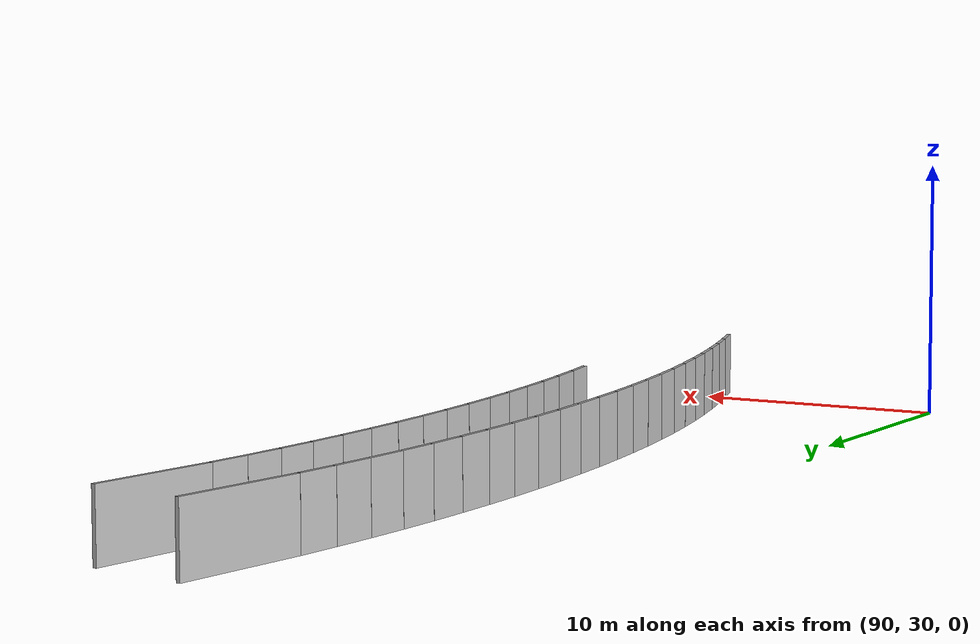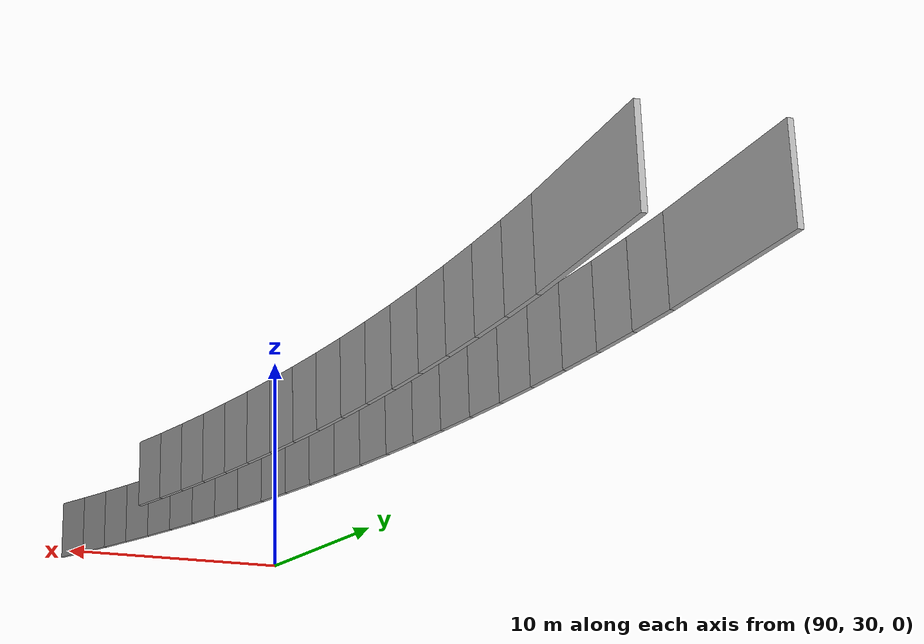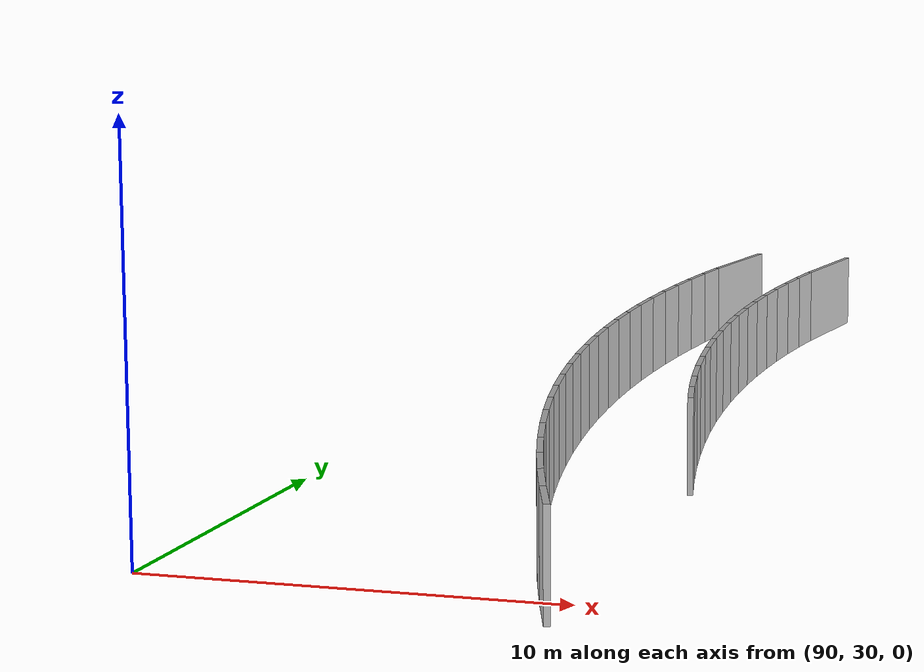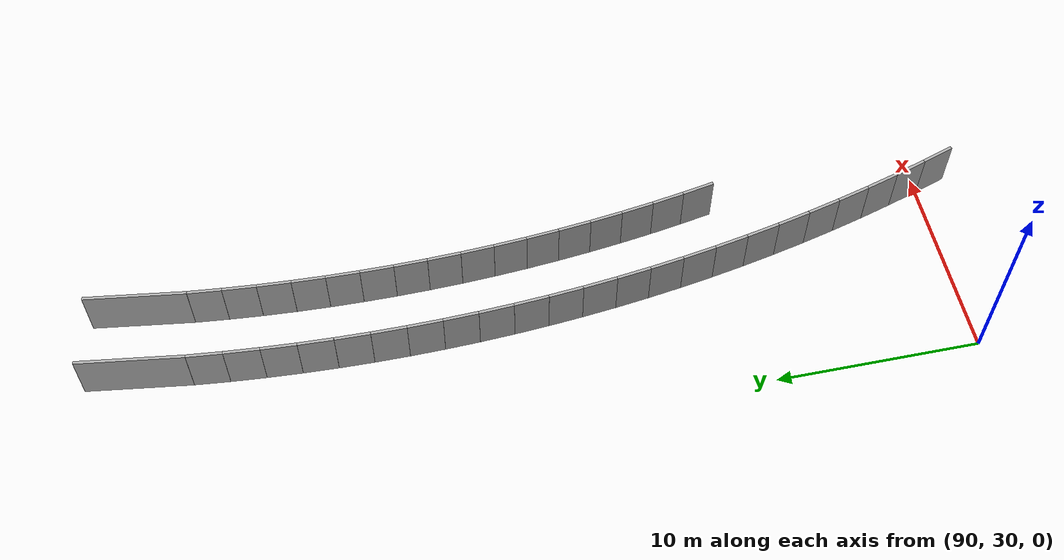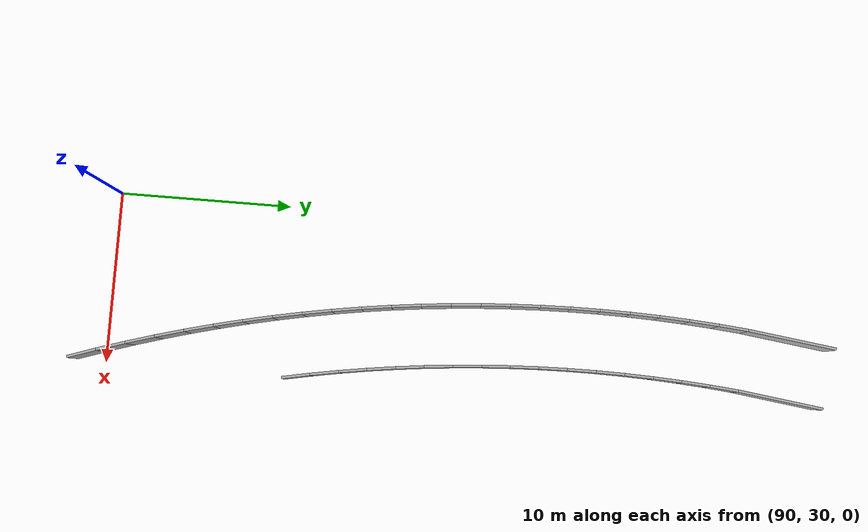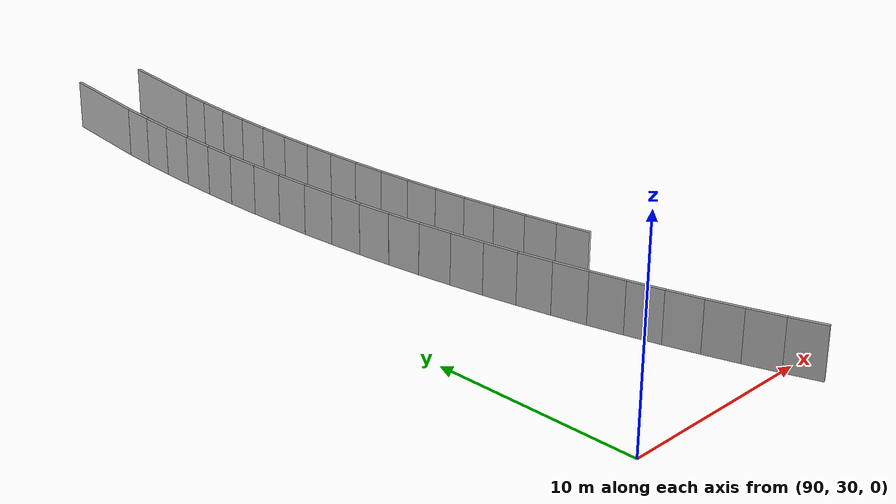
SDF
<?xml version="1.0" ?>
<sdf version="1.6">
  <model name="sps_0500">
    <pose frame="">0 0 0 0 -0 0</pose>
    <static>1</static>
    <self_collide>0</self_collide>
    <allow_auto_disable>0</allow_auto_disable>
    <link name="Wall1606">
      <kinematic>0</kinematic>
      <gravity>1</gravity>
      <self_collide>0</self_collide>
      <collision name="collision">
        <geometry>
          <box>
            <size>1.70136 0.15 2.5</size>
          </box>
        </geometry>
        <pose frame="">0 0 0 0 -0 0</pose>
      </collision>
      <visual name="visual">
        <geometry>
          <box>
            <size>1.70136 0.15 2.5</size>
          </box>
        </geometry>
        <pose frame="">0 0 0 0 -0 0</pose>
        <cast_shadows>1</cast_shadows>
        <transparency>0.0</transparency>
      </visual>
      <pose frame="">99.5879 29.1684 1.25 0 -0 1.90035</pose>
    </link>
    <link name="Wall1607">
      <kinematic>0</kinematic>
      <gravity>1</gravity>
      <self_collide>0</self_collide>
      <collision name="collision">
        <geometry>
          <box>
            <size>1.70146 0.15 2.5</size>
          </box>
        </geometry>
        <pose frame="">0 0 0 0 -0 0</pose>
      </collision>
      <visual name="visual">
        <geometry>
          <box>
            <size>1.70146 0.15 2.5</size>
          </box>
        </geometry>
        <pose frame="">0 0 0 0 -0 0</pose>
        <cast_shadows>1</cast_shadows>
        <transparency>0.0</transparency>
      </visual>
      <pose frame="">99.0529 30.7834 1.25 0 -0 1.88102</pose>
    </link>
    <link name="Wall1608">
      <kinematic>0</kinematic>
      <gravity>1</gravity>
      <self_collide>0</self_collide>
      <collision name="collision">
        <geometry>
          <box>
            <size>1.70119 0.15 2.5</size>
          </box>
        </geometry>
        <pose frame="">0 0 0 0 -0 0</pose>
      </collision>
      <visual name="visual">
        <geometry>
          <box>
            <size>1.70119 0.15 2.5</size>
          </box>
        </geometry>
        <pose frame="">0 0 0 0 -0 0</pose>
        <cast_shadows>1</cast_shadows>
        <transparency>0.0</transparency>
      </visual>
      <pose frame="">98.549 32.4083 1.25 0 -0 1.86199</pose>
    </link>
    <link name="Wall1609">
      <kinematic>0</kinematic>
      <gravity>1</gravity>
      <self_collide>0</self_collide>
      <collision name="collision">
        <geometry>
          <box>
            <size>1.70126 0.15 2.5</size>
          </box>
        </geometry>
        <pose frame="">0 0 0 0 -0 0</pose>
      </collision>
      <visual name="visual">
        <geometry>
          <box>
            <size>1.70126 0.15 2.5</size>
          </box>
        </geometry>
        <pose frame="">0 0 0 0 -0 0</pose>
        <cast_shadows>1</cast_shadows>
        <transparency>0.0</transparency>
      </visual>
      <pose frame="">98.0764 34.0425 1.25 0 -0 1.84263</pose>
    </link>
    <link name="Wall1610">
      <kinematic>0</kinematic>
      <gravity>1</gravity>
      <self_collide>0</self_collide>
      <collision name="collision">
        <geometry>
          <box>
            <size>1.70126 0.15 2.5</size>
          </box>
        </geometry>
        <pose frame="">0 0 0 0 -0 0</pose>
      </collision>
      <visual name="visual">
        <geometry>
          <box>
            <size>1.70126 0.15 2.5</size>
          </box>
        </geometry>
        <pose frame="">0 0 0 0 -0 0</pose>
        <cast_shadows>1</cast_shadows>
        <transparency>0.0</transparency>
      </visual>
      <pose frame="">97.6353 35.6855 1.25 0 -0 1.82354</pose>
    </link>
    <link name="Wall1611">
      <kinematic>0</kinematic>
      <gravity>1</gravity>
      <self_collide>0</self_collide>
      <collision name="collision">
        <geometry>
          <box>
            <size>1.70141 0.15 2.5</size>
          </box>
        </geometry>
        <pose frame="">0 0 0 0 -0 0</pose>
      </collision>
      <visual name="visual">
        <geometry>
          <box>
            <size>1.70141 0.15 2.5</size>
          </box>
        </geometry>
        <pose frame="">0 0 0 0 -0 0</pose>
        <cast_shadows>1</cast_shadows>
        <transparency>0.0</transparency>
      </visual>
      <pose frame="">97.2257 37.3367 1.25 0 -0 1.80437</pose>
    </link>
    <link name="Wall1612">
      <kinematic>0</kinematic>
      <gravity>1</gravity>
      <self_collide>0</self_collide>
      <collision name="collision">
        <geometry>
          <box>
            <size>1.70131 0.15 2.5</size>
          </box>
        </geometry>
        <pose frame="">0 0 0 0 -0 0</pose>
      </collision>
      <visual name="visual">
        <geometry>
          <box>
            <size>1.70131 0.15 2.5</size>
          </box>
        </geometry>
        <pose frame="">0 0 0 0 -0 0</pose>
        <cast_shadows>1</cast_shadows>
        <transparency>0.0</transparency>
      </visual>
      <pose frame="">96.8478 38.9955 1.25 0 -0 1.78521</pose>
    </link>
    <link name="Wall1613">
      <kinematic>0</kinematic>
      <gravity>1</gravity>
      <self_collide>0</self_collide>
      <collision name="collision">
        <geometry>
          <box>
            <size>1.70127 0.15 2.5</size>
          </box>
        </geometry>
        <pose frame="">0 0 0 0 -0 0</pose>
      </collision>
      <visual name="visual">
        <geometry>
          <box>
            <size>1.70127 0.15 2.5</size>
          </box>
        </geometry>
        <pose frame="">0 0 0 0 -0 0</pose>
        <cast_shadows>1</cast_shadows>
        <transparency>0.0</transparency>
      </visual>
      <pose frame="">96.5019 40.6612 1.25 0 -0 1.76587</pose>
    </link>
    <link name="Wall1614">
      <kinematic>0</kinematic>
      <gravity>1</gravity>
      <self_collide>0</self_collide>
      <collision name="collision">
        <geometry>
          <box>
            <size>1.70125 0.15 2.5</size>
          </box>
        </geometry>
        <pose frame="">0 0 0 0 -0 0</pose>
      </collision>
      <visual name="visual">
        <geometry>
          <box>
            <size>1.70125 0.15 2.5</size>
          </box>
        </geometry>
        <pose frame="">0 0 0 0 -0 0</pose>
        <cast_shadows>1</cast_shadows>
        <transparency>0.0</transparency>
      </visual>
      <pose frame="">96.1882 42.3332 1.25 0 -0 1.74674</pose>
    </link>
    <link name="Wall1615">
      <kinematic>0</kinematic>
      <gravity>1</gravity>
      <self_collide>0</self_collide>
      <collision name="collision">
        <geometry>
          <box>
            <size>1.70147 0.15 2.5</size>
          </box>
        </geometry>
        <pose frame="">0 0 0 0 -0 0</pose>
      </collision>
      <visual name="visual">
        <geometry>
          <box>
            <size>1.70147 0.15 2.5</size>
          </box>
        </geometry>
        <pose frame="">0 0 0 0 -0 0</pose>
        <cast_shadows>1</cast_shadows>
        <transparency>0.0</transparency>
      </visual>
      <pose frame="">95.9065 44.011 1.25 0 -0 1.72755</pose>
    </link>
    <link name="Wall1616">
      <kinematic>0</kinematic>
      <gravity>1</gravity>
      <self_collide>0</self_collide>
      <collision name="collision">
        <geometry>
          <box>
            <size>1.7013 0.15 2.5</size>
          </box>
        </geometry>
        <pose frame="">0 0 0 0 -0 0</pose>
      </collision>
      <visual name="visual">
        <geometry>
          <box>
            <size>1.7013 0.15 2.5</size>
          </box>
        </geometry>
        <pose frame="">0 0 0 0 -0 0</pose>
        <cast_shadows>1</cast_shadows>
        <transparency>0.0</transparency>
      </visual>
      <pose frame="">95.657 45.6939 1.25 0 -0 1.70831</pose>
    </link>
    <link name="Wall1617">
      <kinematic>0</kinematic>
      <gravity>1</gravity>
      <self_collide>0</self_collide>
      <collision name="collision">
        <geometry>
          <box>
            <size>1.70128 0.15 2.5</size>
          </box>
        </geometry>
        <pose frame="">0 0 0 0 -0 0</pose>
      </collision>
      <visual name="visual">
        <geometry>
          <box>
            <size>1.70128 0.15 2.5</size>
          </box>
        </geometry>
        <pose frame="">0 0 0 0 -0 0</pose>
        <cast_shadows>1</cast_shadows>
        <transparency>0.0</transparency>
      </visual>
      <pose frame="">95.4401 47.3812 1.25 0 -0 1.68907</pose>
    </link>
    <link name="Wall1618">
      <kinematic>0</kinematic>
      <gravity>1</gravity>
      <self_collide>0</self_collide>
      <collision name="collision">
        <geometry>
          <box>
            <size>1.70117 0.15 2.5</size>
          </box>
        </geometry>
        <pose frame="">0 0 0 0 -0 0</pose>
      </collision>
      <visual name="visual">
        <geometry>
          <box>
            <size>1.70117 0.15 2.5</size>
          </box>
        </geometry>
        <pose frame="">0 0 0 0 -0 0</pose>
        <cast_shadows>1</cast_shadows>
        <transparency>0.0</transparency>
      </visual>
      <pose frame="">95.2555 49.0723 1.25 0 -0 1.66998</pose>
    </link>
    <link name="Wall1619">
      <kinematic>0</kinematic>
      <gravity>1</gravity>
      <self_collide>0</self_collide>
      <collision name="collision">
        <geometry>
          <box>
            <size>1.70139 0.15 2.5</size>
          </box>
        </geometry>
        <pose frame="">0 0 0 0 -0 0</pose>
      </collision>
      <visual name="visual">
        <geometry>
          <box>
            <size>1.70139 0.15 2.5</size>
          </box>
        </geometry>
        <pose frame="">0 0 0 0 -0 0</pose>
        <cast_shadows>1</cast_shadows>
        <transparency>0.0</transparency>
      </visual>
      <pose frame="">95.1034 50.7667 1.25 0 -0 1.65056</pose>
    </link>
    <link name="Wall1620">
      <kinematic>0</kinematic>
      <gravity>1</gravity>
      <self_collide>0</self_collide>
      <collision name="collision">
        <geometry>
          <box>
            <size>1.70114 0.15 2.5</size>
          </box>
        </geometry>
        <pose frame="">0 0 0 0 -0 0</pose>
      </collision>
      <visual name="visual">
        <geometry>
          <box>
            <size>1.70114 0.15 2.5</size>
          </box>
        </geometry>
        <pose frame="">0 0 0 0 -0 0</pose>
        <cast_shadows>1</cast_shadows>
        <transparency>0.0</transparency>
      </visual>
      <pose frame="">94.984 52.4637 1.25 0 -0 1.63161</pose>
    </link>
    <link name="Wall1621">
      <kinematic>0</kinematic>
      <gravity>1</gravity>
      <self_collide>0</self_collide>
      <collision name="collision">
        <geometry>
          <box>
            <size>1.70123 0.15 2.5</size>
          </box>
        </geometry>
        <pose frame="">0 0 0 0 -0 0</pose>
      </collision>
      <visual name="visual">
        <geometry>
          <box>
            <size>1.70123 0.15 2.5</size>
          </box>
        </geometry>
        <pose frame="">0 0 0 0 -0 0</pose>
        <cast_shadows>1</cast_shadows>
        <transparency>0.0</transparency>
      </visual>
      <pose frame="">94.897 54.1626 1.25 0 -0 1.61232</pose>
    </link>
    <link name="Wall1622">
      <kinematic>0</kinematic>
      <gravity>1</gravity>
      <self_collide>0</self_collide>
      <collision name="collision">
        <geometry>
          <box>
            <size>1.70147 0.15 2.5</size>
          </box>
        </geometry>
        <pose frame="">0 0 0 0 -0 0</pose>
      </collision>
      <visual name="visual">
        <geometry>
          <box>
            <size>1.70147 0.15 2.5</size>
          </box>
        </geometry>
        <pose frame="">0 0 0 0 -0 0</pose>
        <cast_shadows>1</cast_shadows>
        <transparency>0.0</transparency>
      </visual>
      <pose frame="">94.8426 55.863 1.25 0 -0 1.59315</pose>
    </link>
    <link name="Wall1623">
      <kinematic>0</kinematic>
      <gravity>1</gravity>
      <self_collide>0</self_collide>
      <collision name="collision">
        <geometry>
          <box>
            <size>1.70118 0.15 2.5</size>
          </box>
        </geometry>
        <pose frame="">0 0 0 0 -0 0</pose>
      </collision>
      <visual name="visual">
        <geometry>
          <box>
            <size>1.70118 0.15 2.5</size>
          </box>
        </geometry>
        <pose frame="">0 0 0 0 -0 0</pose>
        <cast_shadows>1</cast_shadows>
        <transparency>0.0</transparency>
      </visual>
      <pose frame="">94.8209 57.5641 1.25 0 -0 1.57395</pose>
    </link>
    <link name="Wall1624">
      <kinematic>0</kinematic>
      <gravity>1</gravity>
      <self_collide>0</self_collide>
      <collision name="collision">
        <geometry>
          <box>
            <size>1.70121 0.15 2.5</size>
          </box>
        </geometry>
        <pose frame="">0 0 0 0 -0 0</pose>
      </collision>
      <visual name="visual">
        <geometry>
          <box>
            <size>1.70121 0.15 2.5</size>
          </box>
        </geometry>
        <pose frame="">0 0 0 0 -0 0</pose>
        <cast_shadows>1</cast_shadows>
        <transparency>0.0</transparency>
      </visual>
      <pose frame="">94.8319 59.2652 1.25 0 -0 1.55479</pose>
    </link>
    <link name="Wall1625">
      <kinematic>0</kinematic>
      <gravity>1</gravity>
      <self_collide>0</self_collide>
      <collision name="collision">
        <geometry>
          <box>
            <size>1.7015 0.15 2.5</size>
          </box>
        </geometry>
        <pose frame="">0 0 0 0 -0 0</pose>
      </collision>
      <visual name="visual">
        <geometry>
          <box>
            <size>1.7015 0.15 2.5</size>
          </box>
        </geometry>
        <pose frame="">0 0 0 0 -0 0</pose>
        <cast_shadows>1</cast_shadows>
        <transparency>0.0</transparency>
      </visual>
      <pose frame="">94.8755 60.9659 1.25 0 -0 1.53553</pose>
    </link>
    <link name="Wall1626">
      <kinematic>0</kinematic>
      <gravity>1</gravity>
      <self_collide>0</self_collide>
      <collision name="collision">
        <geometry>
          <box>
            <size>1.70132 0.15 2.5</size>
          </box>
        </geometry>
        <pose frame="">0 0 0 0 -0 0</pose>
      </collision>
      <visual name="visual">
        <geometry>
          <box>
            <size>1.70132 0.15 2.5</size>
          </box>
        </geometry>
        <pose frame="">0 0 0 0 -0 0</pose>
        <cast_shadows>1</cast_shadows>
        <transparency>0.0</transparency>
      </visual>
      <pose frame="">94.9519 62.6655 1.25 0 -0 1.51624</pose>
    </link>
    <link name="Wall1627">
      <kinematic>0</kinematic>
      <gravity>1</gravity>
      <self_collide>0</self_collide>
      <collision name="collision">
        <geometry>
          <box>
            <size>1.70121 0.15 2.5</size>
          </box>
        </geometry>
        <pose frame="">0 0 0 0 -0 0</pose>
      </collision>
      <visual name="visual">
        <geometry>
          <box>
            <size>1.70121 0.15 2.5</size>
          </box>
        </geometry>
        <pose frame="">0 0 0 0 -0 0</pose>
        <cast_shadows>1</cast_shadows>
        <transparency>0.0</transparency>
      </visual>
      <pose frame="">95.0608 64.3632 1.25 0 -0 1.49714</pose>
    </link>
    <link name="Wall1628">
      <kinematic>0</kinematic>
      <gravity>1</gravity>
      <self_collide>0</self_collide>
      <collision name="collision">
        <geometry>
          <box>
            <size>1.70132 0.15 2.5</size>
          </box>
        </geometry>
        <pose frame="">0 0 0 0 -0 0</pose>
      </collision>
      <visual name="visual">
        <geometry>
          <box>
            <size>1.70132 0.15 2.5</size>
          </box>
        </geometry>
        <pose frame="">0 0 0 0 -0 0</pose>
        <cast_shadows>1</cast_shadows>
        <transparency>0.0</transparency>
      </visual>
      <pose frame="">95.2024 66.0585 1.25 0 -0 1.47778</pose>
    </link>
    <link name="Wall1629">
      <kinematic>0</kinematic>
      <gravity>1</gravity>
      <self_collide>0</self_collide>
      <collision name="collision">
        <geometry>
          <box>
            <size>5.10309 0.15 2.5</size>
          </box>
        </geometry>
        <pose frame="">0 0 0 0 -0 0</pose>
      </collision>
      <visual name="visual">
        <geometry>
          <box>
            <size>5.10309 0.15 2.5</size>
          </box>
        </geometry>
        <pose frame="">0 0 0 0 -0 0</pose>
        <cast_shadows>1</cast_shadows>
        <transparency>0.0</transparency>
      </visual>
      <pose frame="">95.6153 69.4351 1.25 0 -0 1.43956</pose>
    </link>
    <link name="Wall1806">
      <kinematic>0</kinematic>
      <gravity>1</gravity>
      <self_collide>0</self_collide>
      <collision name="collision">
        <geometry>
          <box>
            <size>4.88636 0.15 2.5</size>
          </box>
        </geometry>
        <pose frame="">0 0 0 0 -0 0</pose>
      </collision>
      <visual name="visual">
        <geometry>
          <box>
            <size>4.88636 0.15 2.5</size>
          </box>
        </geometry>
        <pose frame="">0 0 0 0 -0 0</pose>
        <cast_shadows>1</cast_shadows>
        <transparency>0.0</transparency>
      </visual>
      <pose frame="">99.0848 68.985 1.25 0 0 -1.70219</pose>
    </link>
    <link name="Wall1807">
      <kinematic>0</kinematic>
      <gravity>1</gravity>
      <self_collide>0</self_collide>
      <collision name="collision">
        <geometry>
          <box>
            <size>1.62882 0.15 2.5</size>
          </box>
        </geometry>
        <pose frame="">0 0 0 0 -0 0</pose>
      </collision>
      <visual name="visual">
        <geometry>
          <box>
            <size>1.62882 0.15 2.5</size>
          </box>
        </geometry>
        <pose frame="">0 0 0 0 -0 0</pose>
        <cast_shadows>1</cast_shadows>
        <transparency>0.0</transparency>
      </visual>
      <pose frame="">98.689 65.752 1.25 0 0 -1.6639</pose>
    </link>
    <link name="Wall1808">
      <kinematic>0</kinematic>
      <gravity>1</gravity>
      <self_collide>0</self_collide>
      <collision name="collision">
        <geometry>
          <box>
            <size>1.62909 0.15 2.5</size>
          </box>
        </geometry>
        <pose frame="">0 0 0 0 -0 0</pose>
      </collision>
      <visual name="visual">
        <geometry>
          <box>
            <size>1.62909 0.15 2.5</size>
          </box>
        </geometry>
        <pose frame="">0 0 0 0 -0 0</pose>
        <cast_shadows>1</cast_shadows>
        <transparency>0.0</transparency>
      </visual>
      <pose frame="">98.5531 64.1288 1.25 0 0 -1.64475</pose>
    </link>
    <link name="Wall1809">
      <kinematic>0</kinematic>
      <gravity>1</gravity>
      <self_collide>0</self_collide>
      <collision name="collision">
        <geometry>
          <box>
            <size>1.62885 0.15 2.5</size>
          </box>
        </geometry>
        <pose frame="">0 0 0 0 -0 0</pose>
      </collision>
      <visual name="visual">
        <geometry>
          <box>
            <size>1.62885 0.15 2.5</size>
          </box>
        </geometry>
        <pose frame="">0 0 0 0 -0 0</pose>
        <cast_shadows>1</cast_shadows>
        <transparency>0.0</transparency>
      </visual>
      <pose frame="">98.4483 62.5033 1.25 0 0 -1.62561</pose>
    </link>
    <link name="Wall1810">
      <kinematic>0</kinematic>
      <gravity>1</gravity>
      <self_collide>0</self_collide>
      <collision name="collision">
        <geometry>
          <box>
            <size>1.62884 0.15 2.5</size>
          </box>
        </geometry>
        <pose frame="">0 0 0 0 -0 0</pose>
      </collision>
      <visual name="visual">
        <geometry>
          <box>
            <size>1.62884 0.15 2.5</size>
          </box>
        </geometry>
        <pose frame="">0 0 0 0 -0 0</pose>
        <cast_shadows>1</cast_shadows>
        <transparency>0.0</transparency>
      </visual>
      <pose frame="">98.3747 60.8762 1.25 0 0 -1.6064</pose>
    </link>
    <link name="Wall1811">
      <kinematic>0</kinematic>
      <gravity>1</gravity>
      <self_collide>0</self_collide>
      <collision name="collision">
        <geometry>
          <box>
            <size>1.62901 0.15 2.5</size>
          </box>
        </geometry>
        <pose frame="">0 0 0 0 -0 0</pose>
      </collision>
      <visual name="visual">
        <geometry>
          <box>
            <size>1.62901 0.15 2.5</size>
          </box>
        </geometry>
        <pose frame="">0 0 0 0 -0 0</pose>
        <cast_shadows>1</cast_shadows>
        <transparency>0.0</transparency>
      </visual>
      <pose frame="">98.3321 59.2479 1.25 0 0 -1.5874</pose>
    </link>
    <link name="Wall1812">
      <kinematic>0</kinematic>
      <gravity>1</gravity>
      <self_collide>0</self_collide>
      <collision name="collision">
        <geometry>
          <box>
            <size>1.62897 0.15 2.5</size>
          </box>
        </geometry>
        <pose frame="">0 0 0 0 -0 0</pose>
      </collision>
      <visual name="visual">
        <geometry>
          <box>
            <size>1.62897 0.15 2.5</size>
          </box>
        </geometry>
        <pose frame="">0 0 0 0 -0 0</pose>
        <cast_shadows>1</cast_shadows>
        <transparency>0.0</transparency>
      </visual>
      <pose frame="">98.3207 57.619 1.25 0 0 -1.56821</pose>
    </link>
    <link name="Wall1813">
      <kinematic>0</kinematic>
      <gravity>1</gravity>
      <self_collide>0</self_collide>
      <collision name="collision">
        <geometry>
          <box>
            <size>1.6288 0.15 2.5</size>
          </box>
        </geometry>
        <pose frame="">0 0 0 0 -0 0</pose>
      </collision>
      <visual name="visual">
        <geometry>
          <box>
            <size>1.6288 0.15 2.5</size>
          </box>
        </geometry>
        <pose frame="">0 0 0 0 -0 0</pose>
        <cast_shadows>1</cast_shadows>
        <transparency>0.0</transparency>
      </visual>
      <pose frame="">98.3405 55.9903 1.25 0 0 -1.54906</pose>
    </link>
    <link name="Wall1814">
      <kinematic>0</kinematic>
      <gravity>1</gravity>
      <self_collide>0</self_collide>
      <collision name="collision">
        <geometry>
          <box>
            <size>1.62899 0.15 2.5</size>
          </box>
        </geometry>
        <pose frame="">0 0 0 0 -0 0</pose>
      </collision>
      <visual name="visual">
        <geometry>
          <box>
            <size>1.62899 0.15 2.5</size>
          </box>
        </geometry>
        <pose frame="">0 0 0 0 -0 0</pose>
        <cast_shadows>1</cast_shadows>
        <transparency>0.0</transparency>
      </visual>
      <pose frame="">98.3915 54.3623 1.25 0 0 -1.52991</pose>
    </link>
    <link name="Wall1815">
      <kinematic>0</kinematic>
      <gravity>1</gravity>
      <self_collide>0</self_collide>
      <collision name="collision">
        <geometry>
          <box>
            <size>1.62892 0.15 2.5</size>
          </box>
        </geometry>
        <pose frame="">0 0 0 0 -0 0</pose>
      </collision>
      <visual name="visual">
        <geometry>
          <box>
            <size>1.62892 0.15 2.5</size>
          </box>
        </geometry>
        <pose frame="">0 0 0 0 -0 0</pose>
        <cast_shadows>1</cast_shadows>
        <transparency>0.0</transparency>
      </visual>
      <pose frame="">98.4737 52.7355 1.25 0 0 -1.5107</pose>
    </link>
    <link name="Wall1816">
      <kinematic>0</kinematic>
      <gravity>1</gravity>
      <self_collide>0</self_collide>
      <collision name="collision">
        <geometry>
          <box>
            <size>1.62888 0.15 2.5</size>
          </box>
        </geometry>
        <pose frame="">0 0 0 0 -0 0</pose>
      </collision>
      <visual name="visual">
        <geometry>
          <box>
            <size>1.62888 0.15 2.5</size>
          </box>
        </geometry>
        <pose frame="">0 0 0 0 -0 0</pose>
        <cast_shadows>1</cast_shadows>
        <transparency>0.0</transparency>
      </visual>
      <pose frame="">98.5871 51.1106 1.25 0 0 -1.49165</pose>
    </link>
    <link name="Wall1817">
      <kinematic>0</kinematic>
      <gravity>1</gravity>
      <self_collide>0</self_collide>
      <collision name="collision">
        <geometry>
          <box>
            <size>1.62891 0.15 2.5</size>
          </box>
        </geometry>
        <pose frame="">0 0 0 0 -0 0</pose>
      </collision>
      <visual name="visual">
        <geometry>
          <box>
            <size>1.62891 0.15 2.5</size>
          </box>
        </geometry>
        <pose frame="">0 0 0 0 -0 0</pose>
        <cast_shadows>1</cast_shadows>
        <transparency>0.0</transparency>
      </visual>
      <pose frame="">98.7315 49.4882 1.25 0 0 -1.47239</pose>
    </link>
    <link name="Wall1818">
      <kinematic>0</kinematic>
      <gravity>1</gravity>
      <self_collide>0</self_collide>
      <collision name="collision">
        <geometry>
          <box>
            <size>1.62903 0.15 2.5</size>
          </box>
        </geometry>
        <pose frame="">0 0 0 0 -0 0</pose>
      </collision>
      <visual name="visual">
        <geometry>
          <box>
            <size>1.62903 0.15 2.5</size>
          </box>
        </geometry>
        <pose frame="">0 0 0 0 -0 0</pose>
        <cast_shadows>1</cast_shadows>
        <transparency>0.0</transparency>
      </visual>
      <pose frame="">98.907 47.8688 1.25 0 0 -1.45329</pose>
    </link>
    <link name="Wall1819">
      <kinematic>0</kinematic>
      <gravity>1</gravity>
      <self_collide>0</self_collide>
      <collision name="collision">
        <geometry>
          <box>
            <size>1.62873 0.15 2.5</size>
          </box>
        </geometry>
        <pose frame="">0 0 0 0 -0 0</pose>
      </collision>
      <visual name="visual">
        <geometry>
          <box>
            <size>1.62873 0.15 2.5</size>
          </box>
        </geometry>
        <pose frame="">0 0 0 0 -0 0</pose>
        <cast_shadows>1</cast_shadows>
        <transparency>0.0</transparency>
      </visual>
      <pose frame="">99.1133 46.2531 1.25 0 0 -1.4343</pose>
    </link>
    <link name="Wall1820">
      <kinematic>0</kinematic>
      <gravity>1</gravity>
      <self_collide>0</self_collide>
      <collision name="collision">
        <geometry>
          <box>
            <size>1.62916 0.15 2.5</size>
          </box>
        </geometry>
        <pose frame="">0 0 0 0 -0 0</pose>
      </collision>
      <visual name="visual">
        <geometry>
          <box>
            <size>1.62916 0.15 2.5</size>
          </box>
        </geometry>
        <pose frame="">0 0 0 0 -0 0</pose>
        <cast_shadows>1</cast_shadows>
        <transparency>0.0</transparency>
      </visual>
      <pose frame="">99.3505 44.6416 1.25 0 0 -1.41503</pose>
    </link>
    <link name="Wall1821">
      <kinematic>0</kinematic>
      <gravity>1</gravity>
      <self_collide>0</self_collide>
      <collision name="collision">
        <geometry>
          <box>
            <size>1.62881 0.15 2.5</size>
          </box>
        </geometry>
        <pose frame="">0 0 0 0 -0 0</pose>
      </collision>
      <visual name="visual">
        <geometry>
          <box>
            <size>1.62881 0.15 2.5</size>
          </box>
        </geometry>
        <pose frame="">0 0 0 0 -0 0</pose>
        <cast_shadows>1</cast_shadows>
        <transparency>0.0</transparency>
      </visual>
      <pose frame="">99.6184 43.0349 1.25 0 0 -1.39604</pose>
    </link>
    <link name="Wall1822">
      <kinematic>0</kinematic>
      <gravity>1</gravity>
      <self_collide>0</self_collide>
      <collision name="collision">
        <geometry>
          <box>
            <size>1.62898 0.15 2.5</size>
          </box>
        </geometry>
        <pose frame="">0 0 0 0 -0 0</pose>
      </collision>
      <visual name="visual">
        <geometry>
          <box>
            <size>1.62898 0.15 2.5</size>
          </box>
        </geometry>
        <pose frame="">0 0 0 0 -0 0</pose>
        <cast_shadows>1</cast_shadows>
        <transparency>0.0</transparency>
      </visual>
      <pose frame="">99.9171 41.4337 1.25 0 0 -1.37669</pose>
    </link>
  </model>
</sdf>
